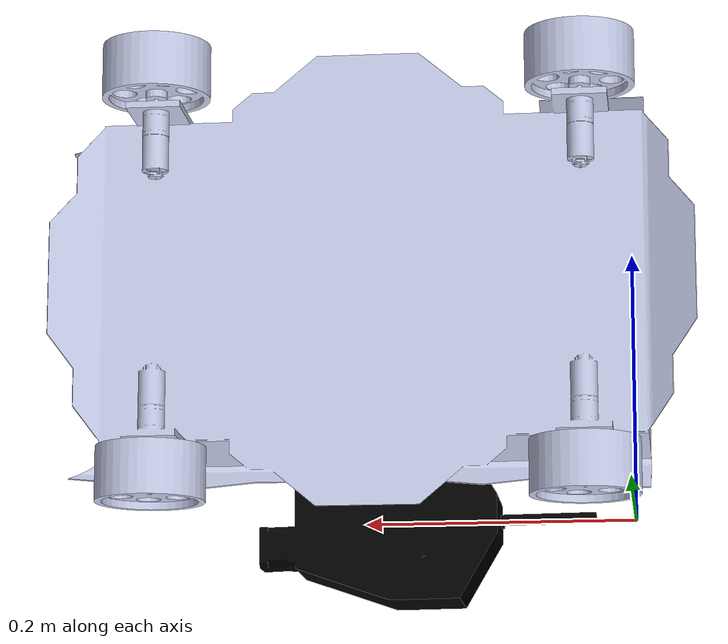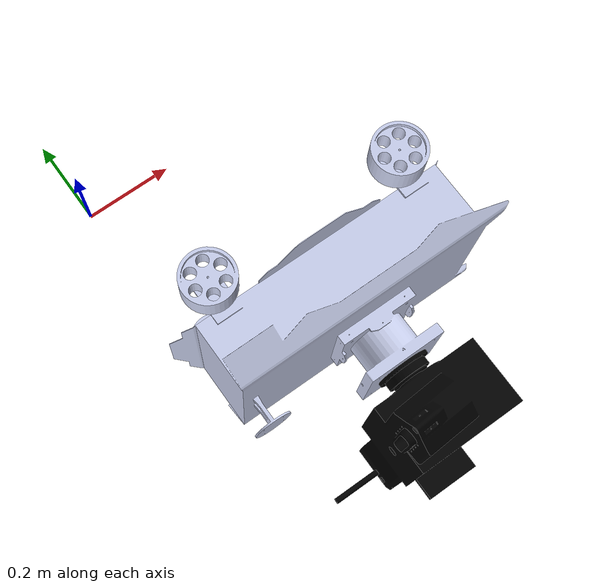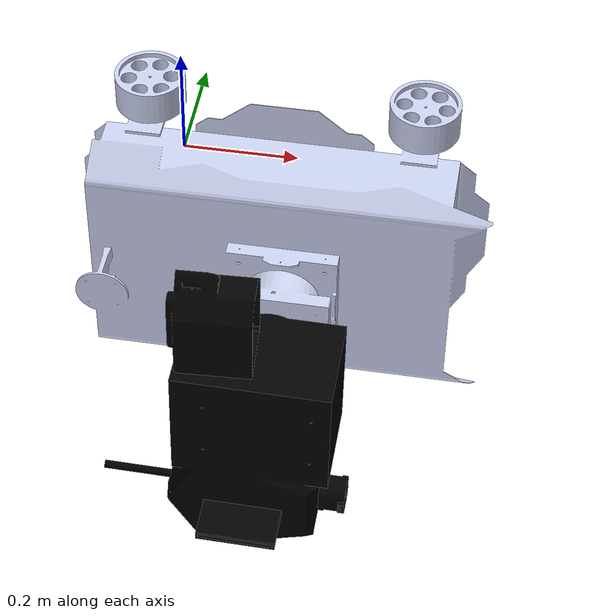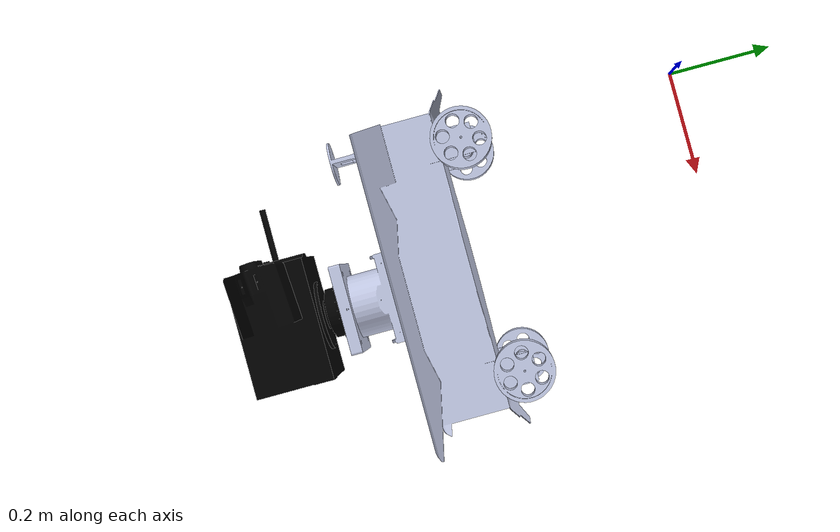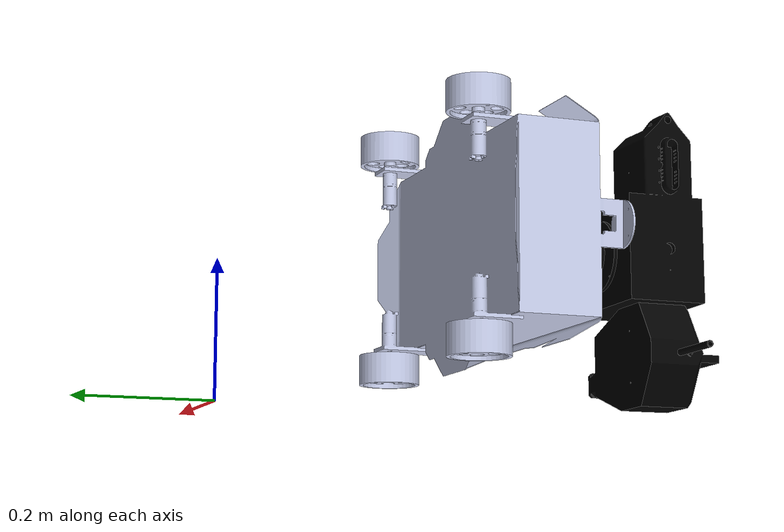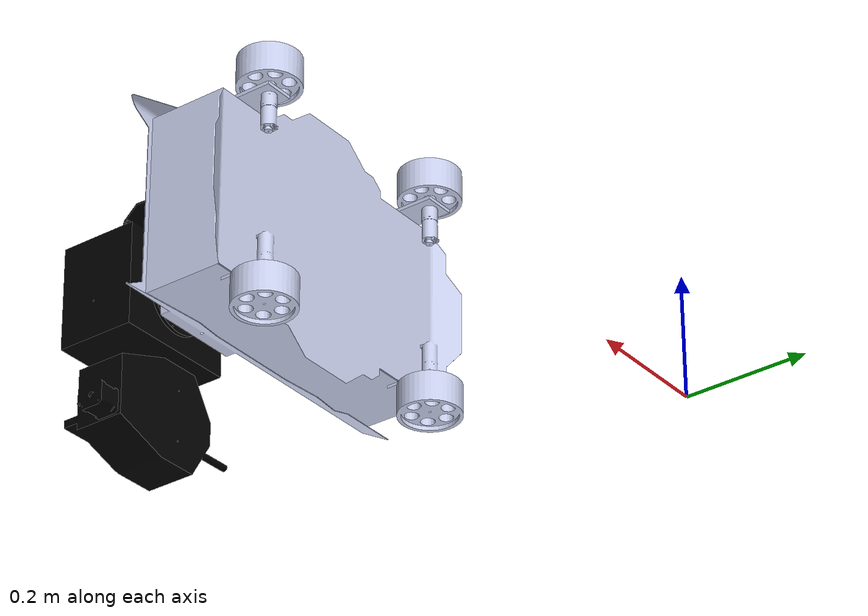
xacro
<?xml version="1.0" encoding="utf-8"?>
<robot
  name="ieee">
  <link
    name="base_link">
    <inertial>
      <origin
        xyz="0.25112 -0.57291 0.30187"
        rpy="0 0 0" />
      <mass
        value="1.633" />
      <inertia
        ixx="0.0079465"
        ixy="4.4353E-05"
        ixz="8.7912E-06"
        iyy="0.022836"
        iyz="2.3556E-06"
        izz="0.015937" />
    </inertial>
    <visual>
      <origin
        xyz="0 0 0"
        rpy="0 0 0" />
      <geometry>
        <mesh
          filename="file:///home/naveengnanasekar/dev_ws/src/my_robot/meshes/base_link.STL" />
      </geometry>
      <material
        name="">
        <color
          rgba="0.79216 0.81961 0.93333 1" />
      </material>
    </visual>
    <collision>
      <origin
        xyz="0 0 0"
        rpy="0 0 0" />
      <geometry>
        <mesh
          filename="file:///home/naveengnanasekar/dev_ws/src/my_robot/meshes/base_link.STL" />
      </geometry>
    </collision>
  </link>
  <link
    name="W1">
    <inertial>
      <origin
        xyz="-6.66133814775094E-16 7.21644966006352E-16 -0.0252070209755648"
        rpy="0 0 0" />
      <mass
        value="0.219478804012584" />
      <inertia
        ixx="0.000194267977141188"
        ixy="1.62630325872826E-19"
        ixz="-1.3179284510751E-19"
        iyy="0.000194267977141188"
        iyz="-3.78873931579195E-21"
        izz="0.000321855143610039" />
    </inertial>
    <visual>
      <origin
        xyz="0 0 0"
        rpy="0 0 0" />
      <geometry>
        <mesh
          filename="file:///home/naveengnanasekar/dev_ws/src/my_robot/meshes/W1.STL" />
      </geometry>
      <material
        name="">
        <color
          rgba="0.792156862745098 0.819607843137255 0.933333333333333 1" />
      </material>
    </visual>
    <collision>
      <origin
        xyz="0 0 0"
        rpy="0 0 0" />
      <geometry>
        <mesh
          filename="file:///home/naveengnanasekar/dev_ws/src/my_robot/meshes/W1.STL" />
      </geometry>
    </collision>
  </link>
  <joint
    name="JOINT_WHEEL_1"
    type="continuous">
    <origin
      xyz="0.052037 -0.41904 0.088366"
      rpy="3.1416 0 -0.81731" />
    <parent
      link="base_link" />
    <child
      link="W1" />
    <axis
      xyz="0 0 1" />
  </joint>
  <link
    name="W2">
    <inertial>
      <origin
        xyz="1.66533453693773E-16 1.11022302462516E-16 0.0247929790244354"
        rpy="0 0 0" />
      <mass
        value="0.219478804012584" />
      <inertia
        ixx="0.000194267977141189"
        ixy="2.03287907341032E-19"
        ixz="-6.07771461366044E-20"
        iyy="0.000194267977141189"
        iyz="-6.00962376213491E-20"
        izz="0.00032185514361004" />
    </inertial>
    <visual>
      <origin
        xyz="0 0 0"
        rpy="0 0 0" />
      <geometry>
        <mesh
          filename="file:///home/naveengnanasekar/dev_ws/src/my_robot/meshes/W2.STL" />
      </geometry>
      <material
        name="">
        <color
          rgba="0.792156862745098 0.819607843137255 0.933333333333333 1" />
      </material>
    </visual>
    <collision>
      <origin
        xyz="0 0 0"
        rpy="0 0 0" />
      <geometry>
        <mesh
          filename="file:///home/naveengnanasekar/dev_ws/src/my_robot/meshes/W2.STL" />
      </geometry>
    </collision>
  </link>
  <joint
    name="JOINT_WHEEL_2"
    type="continuous">
    <origin
      xyz="0.052037 -0.41904 0.46447"
      rpy="0 0 -0.30077" />
    <parent
      link="base_link" />
    <child
      link="W2" />
    <axis
      xyz="0 0 -1" />
  </joint>
  <link
    name="W3">
    <inertial>
      <origin
        xyz="8.04911692853238E-15 -5.55111512312578E-15 -0.0252070209755648"
        rpy="0 0 0" />
      <mass
        value="0.219478804012584" />
      <inertia
        ixx="0.000194267977141188"
        ixy="2.60886147754325E-19"
        ixz="3.45748612615907E-20"
        iyy="0.000194267977141188"
        iyz="2.48903131783379E-20"
        izz="0.000321855143610039" />
    </inertial>
    <visual>
      <origin
        xyz="0 0 0"
        rpy="0 0 0" />
      <geometry>
        <mesh
          filename="file:///home/naveengnanasekar/dev_ws/src/my_robot/meshes/W3.STL" />
      </geometry>
      <material
        name="">
        <color
          rgba="0.792156862745098 0.819607843137255 0.933333333333333 1" />
      </material>
    </visual>
    <collision>
      <origin
        xyz="0 0 0"
        rpy="0 0 0" />
      <geometry>
        <mesh
          filename="file:///home/naveengnanasekar/dev_ws/src/my_robot/meshes/W3.STL" />
      </geometry>
    </collision>
  </link>
  <joint
    name="JOINT_WHEEL_3"
    type="continuous">
    <origin
      xyz="0.44204 -0.41904 0.088366"
      rpy="-3.1416 0 0.21133" />
    <parent
      link="base_link" />
    <child
      link="W3" />
    <axis
      xyz="0 0 1" />
  </joint>
  <link
    name="W4">
    <inertial>
      <origin
        xyz="-3.77475828372553E-15 -1.11022302462516E-16 0.0247929790244354"
        rpy="0 0 0" />
      <mass
        value="0.219478804012583" />
      <inertia
        ixx="0.000194267977141188"
        ixy="2.16840434497101E-19"
        ixz="-7.34324717805692E-20"
        iyy="0.000194267977141188"
        iyz="3.68119439514205E-19"
        izz="0.000321855143610039" />
    </inertial>
    <visual>
      <origin
        xyz="0 0 0"
        rpy="0 0 0" />
      <geometry>
        <mesh
          filename="file:///home/naveengnanasekar/dev_ws/src/my_robot/meshes/W4.STL" />
      </geometry>
      <material
        name="">
        <color
          rgba="0.792156862745098 0.819607843137255 0.933333333333333 1" />
      </material>
    </visual>
    <collision>
      <origin
        xyz="0 0 0"
        rpy="0 0 0" />
      <geometry>
        <mesh
          filename="file:///home/naveengnanasekar/dev_ws/src/my_robot/meshes/W4.STL" />
      </geometry>
    </collision>
  </link>
  <joint
    name="JOINT_WHEEL_4"
    type="continuous">
    <origin
      xyz="0.442036837930346 -0.419041472656676 0.464466233783593"
      rpy="0 0 0.439671762695337" />
    <parent
      link="base_link" />
    <child
      link="W4" />
    <axis
      xyz="0 0 -1" />
  </joint>
  <link
    name="TURRET">
    <inertial>
      <origin
        xyz="-0.0243300190054064 0.105650153739771 0.0535030356360243"
        rpy="0 0 0" />
      <mass
        value="0.41214867902266" />
      <inertia
        ixx="0.027672016842789"
        ixy="3.51578669005408E-05"
        ixz="-0.00275141652608014"
        iyy="0.0462070777435252"
        iyz="1.00478354123469E-05"
        izz="0.0348017884824339" />
    </inertial>
    <visual>
      <origin
        xyz="0 0 0"
        rpy="0 0 0" />
      <geometry>
        <mesh
          filename="file:///home/naveengnanasekar/dev_ws/src/my_robot/meshes/TURRET.STL" />
      </geometry>
      <material
        name="">
        <color
          rgba="0 0 0 1" />
      </material>
    </visual>
    <collision>
      <origin
        xyz="0 0 0"
        rpy="0 0 0" />
      <geometry>
        <mesh
          filename="file:///home/naveengnanasekar/dev_ws/src/my_robot/meshes/TURRET.STL" />
      </geometry>
    </collision>
  </link>
  <joint
    name="JOINT_TURRET"
    type="continuous">
    <origin
      xyz="0.27248 -0.69627 0.29909"
      rpy="3.1416 -0.31283 0" />
    <parent
      link="base_link" />
    <child
      link="TURRET" />
    <axis
      xyz="0 1 0" />
  </joint>
</robot>
